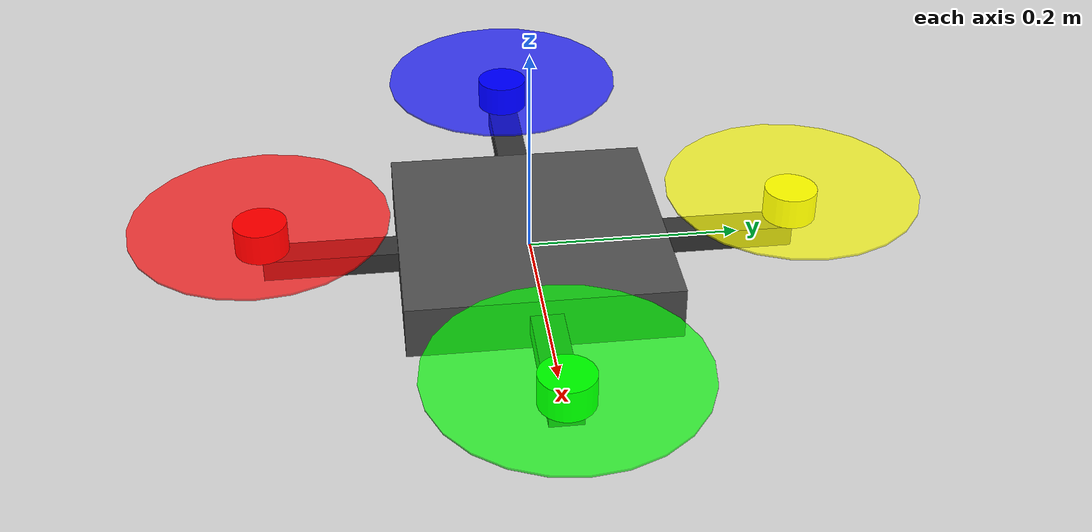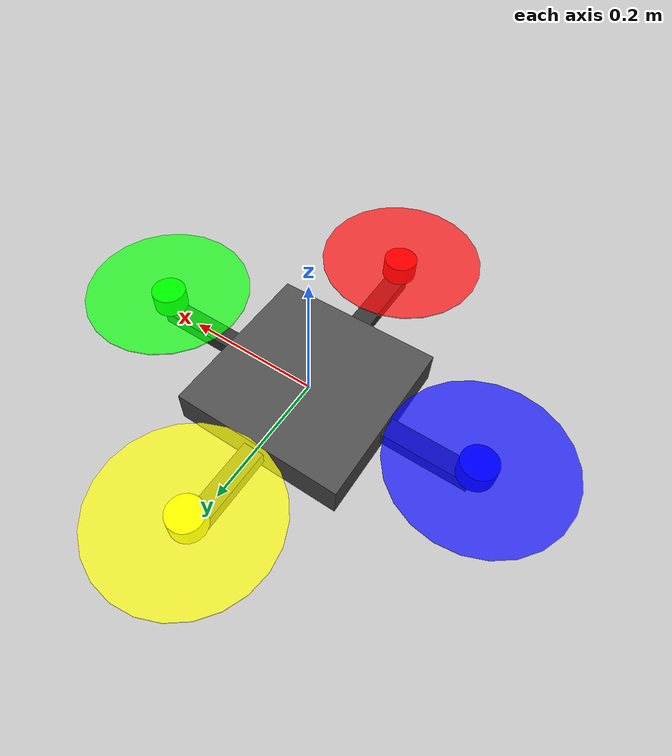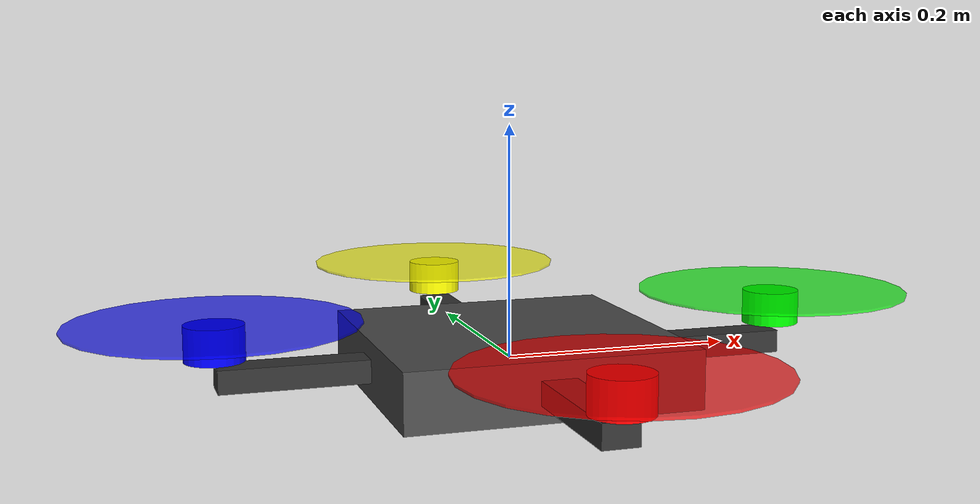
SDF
<?xml version="1.0" ?>
<sdf version="1.6">
  <model name="replay_quadcopter">
    <!-- 需要被 SetEntityState 移动，所以不能 static -->
    <static>false</static>
    <pose>0 0 0 0 0 0</pose>

    <link name="base_link">
      <pose>0 0 0 0 0 0</pose>

      <!-- 物理属性尽量“安静”一些 -->
      <inertial>
        <mass>0.5</mass>
        <inertia>
          <ixx>0.01</ixx>
          <iyy>0.01</iyy>
          <izz>0.02</izz>
          <ixy>0.0</ixy>
          <ixz>0.0</ixz>
          <iyz>0.0</iyz>
        </inertia>
      </inertial>
      <gravity>0</gravity>
      <self_collide>false</self_collide>
      <linear_damping>0.8</linear_damping>
      <angular_damping>0.8</angular_damping>

      <!-- 1. 机身 -->
      <collision name="body_collision">
        <geometry>
          <box>
            <size>0.25 0.25 0.05</size>
          </box>
        </geometry>
      </collision>

      <visual name="body_visual">
        <geometry>
          <box>
            <size>0.25 0.25 0.05</size>
          </box>
        </geometry>
        <material>
          <ambient>0.2 0.2 0.2 1</ambient>
          <diffuse>0.3 0.3 0.3 1</diffuse>
        </material>
      </visual>

      <!-- 2. 前后左右四个机臂（十字） -->
      <visual name="arm_x">
        <geometry>
          <box>
            <size>0.5 0.03 0.02</size>
          </box>
        </geometry>
        <material>
          <ambient>0.15 0.15 0.15 1</ambient>
          <diffuse>0.2 0.2 0.2 1</diffuse>
        </material>
      </visual>

      <visual name="arm_y">
        <geometry>
          <box>
            <size>0.03 0.5 0.02</size>
          </box>
        </geometry>
        <material>
          <ambient>0.15 0.15 0.15 1</ambient>
          <diffuse>0.2 0.2 0.2 1</diffuse>
        </material>
      </visual>

      <!-- 3. 四个电机+桨盘（颜色区分方向） -->
      <!-- front (x+), green -->
      <visual name="motor_front">
        <pose>0.25 0 0.03 0 0 0</pose>
        <geometry>
          <cylinder>
            <radius>0.025</radius>
            <length>0.03</length>
          </cylinder>
        </geometry>
        <material>
          <diffuse>0 1 0 1</diffuse>
        </material>
      </visual>
      <visual name="prop_front">
        <pose>0.25 0 0.045 0 0 0</pose>
        <geometry>
          <cylinder>
            <radius>0.12</radius>
            <length>0.002</length>
          </cylinder>
        </geometry>
        <material>
          <diffuse>0 1 0 0.7</diffuse>
        </material>
      </visual>

      <!-- right (y-), red -->
      <visual name="motor_right">
        <pose>0 -0.25 0.03 0 0 0</pose>
        <geometry>
          <cylinder>
            <radius>0.025</radius>
            <length>0.03</length>
          </cylinder>
        </geometry>
        <material>
          <diffuse>1 0 0 1</diffuse>
        </material>
      </visual>
      <visual name="prop_right">
        <pose>0 -0.25 0.045 0 0 0</pose>
        <geometry>
          <cylinder>
            <radius>0.12</radius>
            <length>0.002</length>
          </cylinder>
        </geometry>
        <material>
          <diffuse>1 0 0 0.7</diffuse>
        </material>
      </visual>

      <!-- back (x-), blue -->
      <visual name="motor_back">
        <pose>-0.25 0 0.03 0 0 0</pose>
        <geometry>
          <cylinder>
            <radius>0.025</radius>
            <length>0.03</length>
          </cylinder>
        </geometry>
        <material>
          <diffuse>0 0 1 1</diffuse>
        </material>
      </visual>
      <visual name="prop_back">
        <pose>-0.25 0 0.045 0 0 0</pose>
        <geometry>
          <cylinder>
            <radius>0.12</radius>
            <length>0.002</length>
          </cylinder>
        </geometry>
        <material>
          <diffuse>0 0 1 0.7</diffuse>
        </material>
      </visual>

      <!-- left (y+), yellow -->
      <visual name="motor_left">
        <pose>0 0.25 0.03 0 0 0</pose>
        <geometry>
          <cylinder>
            <radius>0.025</radius>
            <length>0.03</length>
          </cylinder>
        </geometry>
        <material>
          <diffuse>1 1 0 1</diffuse>
        </material>
      </visual>
      <visual name="prop_left">
        <pose>0 0.25 0.045 0 0 0</pose>
        <geometry>
          <cylinder>
            <radius>0.12</radius>
            <length>0.002</length>
          </cylinder>
        </geometry>
        <material>
          <diffuse>1 1 0 0.7</diffuse>
        </material>
      </visual>

    </link>
  </model>
</sdf>
